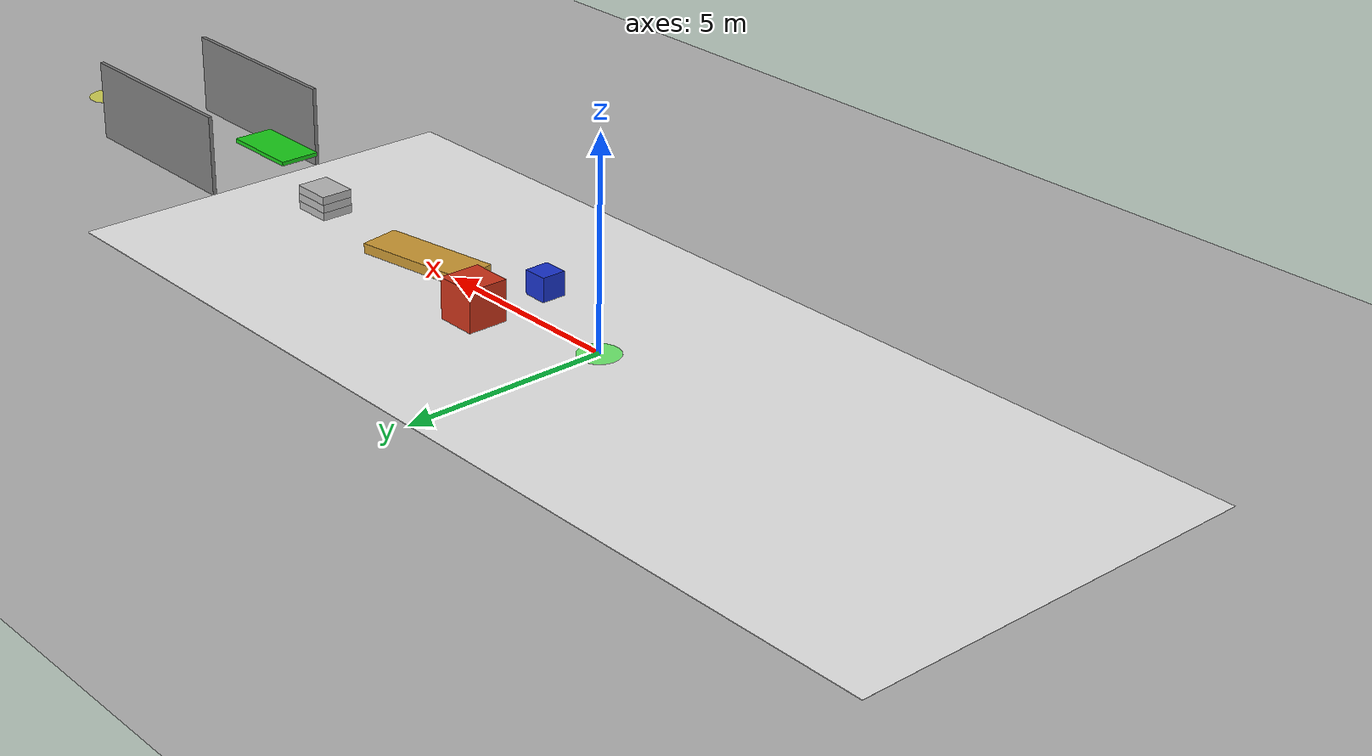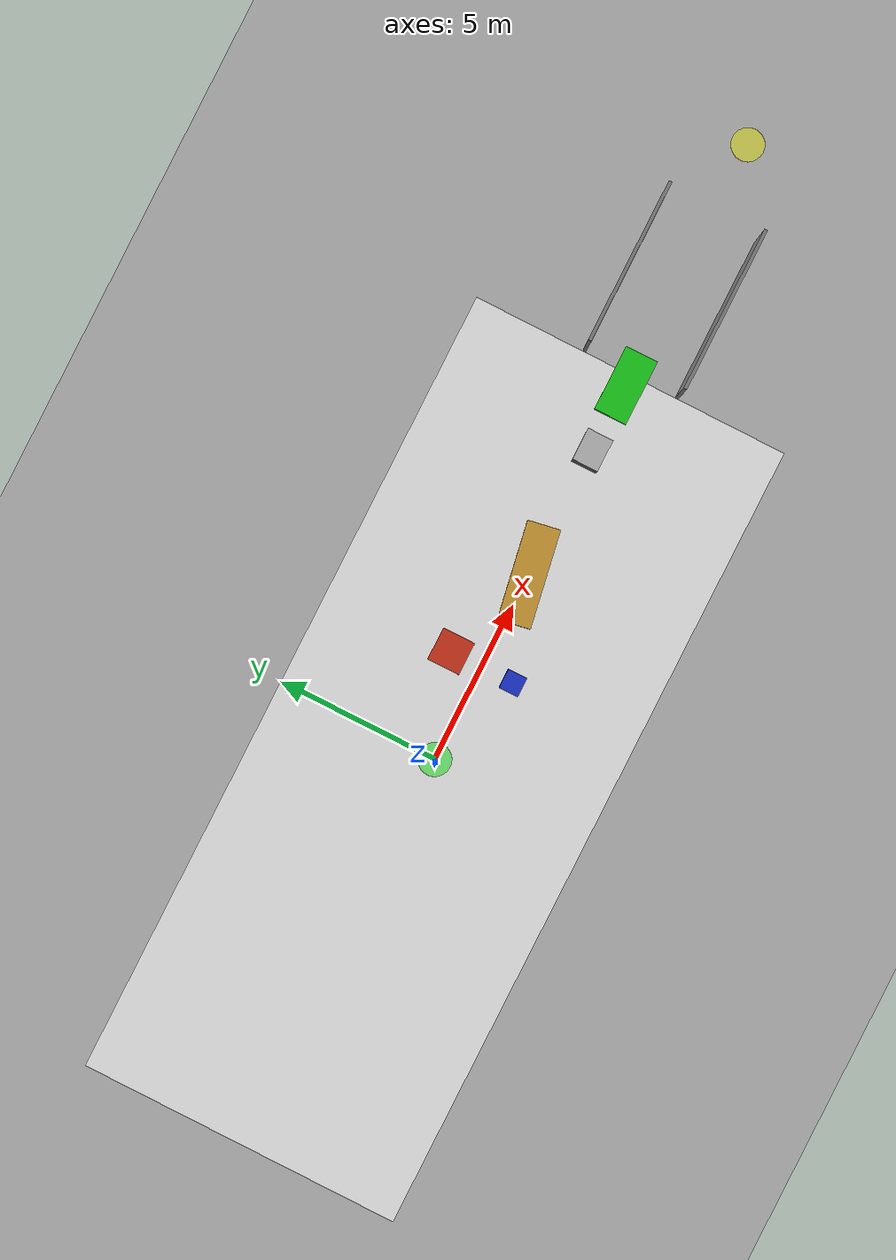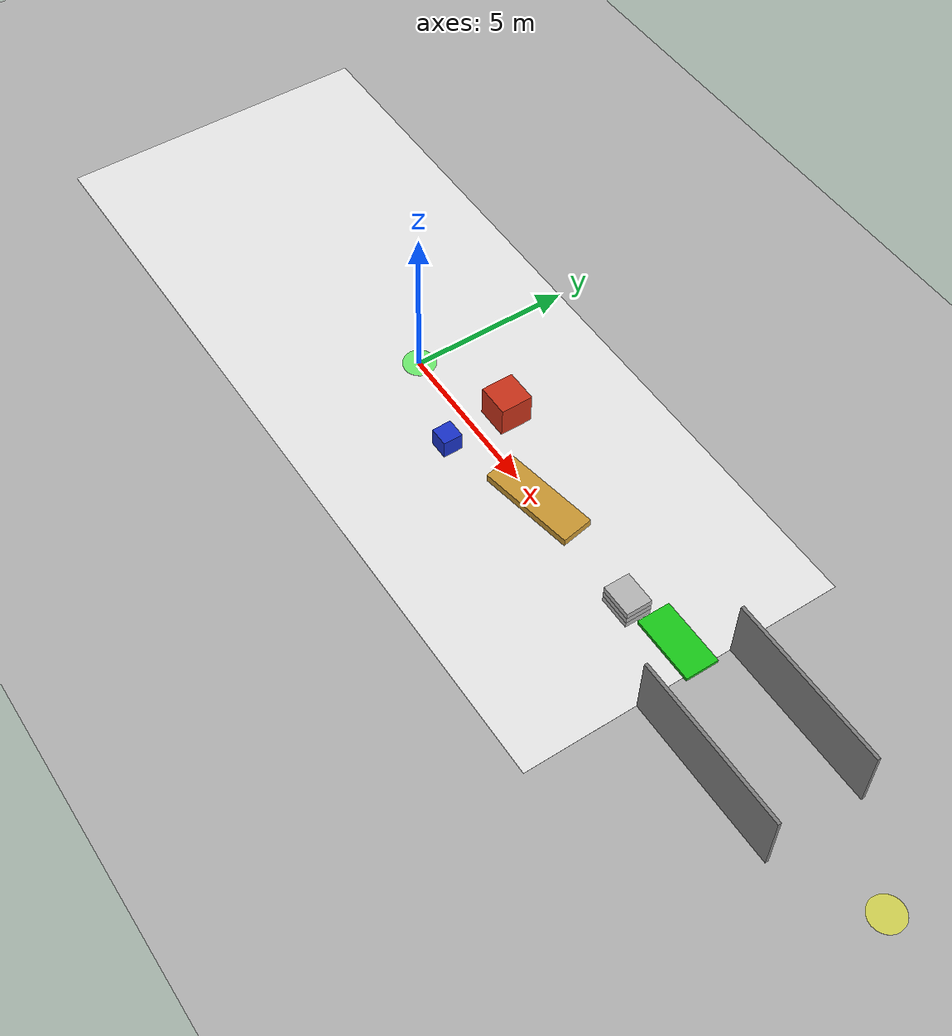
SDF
<?xml version="1.0" ?>
<sdf version="1.7">
  <world name="humanoid_test_world">
    <!-- Physics configuration optimized for humanoid simulation -->
    <physics type="ode">
      <max_step_size>0.002</max_step_size>
      <real_time_factor>0.8</real_time_factor>
      <real_time_update_rate>500</real_time_update_rate>
      <gravity>0 0 -9.8</gravity>
      <ode>
        <solver>
          <type>quick</type>
          <iters>20</iters>
          <sor>1.3</sor>
        </solver>
        <constraints>
          <cfm>0.000001</cfm>
          <erp>0.2</erp>
          <contact_max_correcting_vel>100</contact_max_correcting_vel>
          <contact_surface_layer>0.001</contact_surface_layer>
        </constraints>
      </ode>
    </physics>

    <!-- Scene configuration -->
    <scene>
      <ambient>0.3 0.3 0.3 1</ambient>
      <background>0.7 0.7 0.7 1</background>
      <shadows>true</shadows>
    </scene>

    <!-- Lighting -->
    <include>
      <uri>model://sun</uri>
    </include>

    <!-- Ground plane with appropriate friction for walking -->
    <model name="ground_plane">
      <static>true</static>
      <link name="link">
        <collision name="collision">
          <geometry>
            <plane>
              <normal>0 0 1</normal>
              <size>100 100</size>
            </plane>
          </geometry>
          <surface>
            <friction>
              <ode>
                <mu>1.0</mu>
                <mu2>1.0</mu2>
              </ode>
            </friction>
            <contact>
              <ode>
                <min_depth>0.001</min_depth>
                <max_vel>100</max_vel>
              </ode>
            </contact>
          </surface>
        </collision>
        <visual name="visual">
          <geometry>
            <plane>
              <normal>0 0 1</normal>
              <size>100 100</size>
            </plane>
          </geometry>
          <material>
            <ambient>0.7 0.7 0.7 1</ambient>
            <diffuse>0.7 0.7 0.7 1</diffuse>
            <specular>0.3 0.3 0.3 1</specular>
          </material>
        </visual>
      </link>
    </model>

    <!-- Starting area marker -->
    <model name="start_marker">
      <pose>0 0 0.01 0 0 0</pose>
      <static>true</static>
      <link name="link">
        <visual name="visual">
          <geometry>
            <cylinder>
              <radius>0.5</radius>
              <length>0.01</length>
            </cylinder>
          </geometry>
          <material>
            <ambient>0 1 0 0.5</ambient>
            <diffuse>0 1 0 0.5</diffuse>
          </material>
        </visual>
      </link>
    </model>

    <!-- Obstacle course section -->
    <!-- Simple box obstacles -->
    <model name="obstacle_1">
      <pose>3 1 0.5 0 0 0</pose>
      <static>true</static>
      <link name="link">
        <collision name="collision">
          <geometry>
            <box>
              <size>1 1 1</size>
            </box>
          </geometry>
        </collision>
        <visual name="visual">
          <geometry>
            <box>
              <size>1 1 1</size>
            </box>
          </geometry>
          <material>
            <ambient>0.8 0.2 0.1 1</ambient>
            <diffuse>0.8 0.2 0.1 1</diffuse>
          </material>
        </visual>
      </link>
    </model>

    <model name="obstacle_2">
      <pose>3 -1 0.3 0 0 0</pose>
      <static>true</static>
      <link name="link">
        <collision name="collision">
          <geometry>
            <box>
              <size>0.6 0.6 0.6</size>
            </box>
          </geometry>
        </collision>
        <visual name="visual">
          <geometry>
            <box>
              <size>0.6 0.6 0.6</size>
            </box>
          </geometry>
          <material>
            <ambient>0.1 0.2 0.8 1</ambient>
            <diffuse>0.1 0.2 0.8 1</diffuse>
          </material>
        </visual>
      </link>
    </model>

    <!-- Ramp for testing locomotion -->
    <model name="ramp">
      <pose>6 0 0 0 0 0.174</pose>  <!-- ~10 degree incline -->
      <static>true</static>
      <link name="link">
        <collision name="collision">
          <geometry>
            <box>
              <size>3 1 0.5</size>
            </box>
          </geometry>
        </collision>
        <visual name="visual">
          <geometry>
            <box>
              <size>3 1 0.5</size>
            </box>
          </geometry>
          <material>
            <ambient>0.8 0.6 0.2 1</ambient>
            <diffuse>0.8 0.6 0.2 1</diffuse>
          </material>
        </visual>
      </link>
    </model>

    <!-- Stairs for testing step climbing -->
    <model name="stairs">
      <pose>10 0 0 0 0 0</pose>
      <static>true</static>
      <link name="link">
        <!-- Step 1 -->
        <collision name="step1_collision">
          <pose>0 0 0.1 0 0 0</pose>
          <geometry>
            <box>
              <size>1 0.8 0.2</size>
            </box>
          </geometry>
        </collision>
        <visual name="step1_visual">
          <pose>0 0 0.1 0 0 0</pose>
          <geometry>
            <box>
              <size>1 0.8 0.2</size>
            </box>
          </geometry>
        </visual>

        <!-- Step 2 -->
        <collision name="step2_collision">
          <pose>0 0 0.3 0 0 0</pose>
          <geometry>
            <box>
              <size>1 0.8 0.2</size>
            </box>
          </geometry>
        </collision>
        <visual name="step2_visual">
          <pose>0 0 0.3 0 0 0</pose>
          <geometry>
            <box>
              <size>1 0.8 0.2</size>
            </box>
          </geometry>
        </visual>

        <!-- Step 3 -->
        <collision name="step3_collision">
          <pose>0 0 0.5 0 0 0</pose>
          <geometry>
            <box>
              <size>1 0.8 0.2</size>
            </box>
          </geometry>
        </collision>
        <visual name="step3_visual">
          <pose>0 0 0.5 0 0 0</pose>
          <geometry>
            <box>
              <size>1 0.8 0.2</size>
            </box>
          </geometry>
        </visual>
      </link>
    </model>

    <!-- Narrow passage -->
    <model name="wall_left">
      <pose>15 1.5 1 0 0 0</pose>
      <static>true</static>
      <link name="link">
        <collision name="collision">
          <geometry>
            <box>
              <size>5 0.1 2</size>
            </box>
          </geometry>
        </collision>
        <visual name="visual">
          <geometry>
            <box>
              <size>5 0.1 2</size>
            </box>
          </geometry>
          <material>
            <ambient>0.5 0.5 0.5 1</ambient>
            <diffuse>0.5 0.5 0.5 1</diffuse>
          </material>
        </visual>
      </link>
    </model>

    <model name="wall_right">
      <pose>15 -1.5 1 0 0 0</pose>
      <static>true</static>
      <link name="link">
        <collision name="collision">
          <geometry>
            <box>
              <size>5 0.1 2</size>
            </box>
          </geometry>
        </collision>
        <visual name="visual">
          <geometry>
            <box>
              <size>5 0.1 2</size>
            </box>
          </geometry>
          <material>
            <ambient>0.5 0.5 0.5 1</ambient>
            <diffuse>0.5 0.5 0.5 1</diffuse>
          </material>
        </visual>
      </link>
    </model>

    <!-- Goal marker -->
    <model name="goal_marker">
      <pose>20 0 0.01 0 0 0</pose>
      <static>true</static>
      <link name="link">
        <visual name="visual">
          <geometry>
            <cylinder>
              <radius>0.5</radius>
              <length>0.01</length>
            </cylinder>
          </geometry>
          <material>
            <ambient>1 1 0 0.5</ambient>
            <diffuse>1 1 0 0.5</diffuse>
          </material>
        </visual>
      </link>
    </model>

    <!-- Moving platform for dynamic testing -->
    <model name="moving_platform">
      <pose>12 0 1 0 0 0</pose>
      <static>false</static>
      <link name="link">
        <collision name="collision">
          <geometry>
            <box>
              <size>2 1 0.1</size>
            </box>
          </geometry>
        </collision>
        <visual name="visual">
          <geometry>
            <box>
              <size>2 1 0.1</size>
            </box>
          </geometry>
          <material>
            <ambient>0.1 0.8 0.1 1</ambient>
            <diffuse>0.1 0.8 0.1 1</diffuse>
          </material>
        </visual>
        <inertial>
          <mass>10.0</mass>
          <inertia>
            <ixx>0.833</ixx>
            <ixy>0</ixy>
            <ixz>0</ixz>
            <iyy>2.5</iyy>
            <iyz>0</iyz>
            <izz>3.33</izz>
          </inertia>
        </inertial>
      </link>
      <!-- Add a simple plugin to make it move back and forth -->
      <plugin name="moving_platform_controller" filename="libgazebo_ros_p3d.so">
        <alwaysOn>true</alwaysOn>
        <updateRate>30.0</updateRate>
        <bodyName>moving_platform::link</bodyName>
        <topicName>moving_platform/pose</topicName>
        <gaussianNoise>0.0</gaussianNoise>
      </plugin>
    </model>

    <!-- Add some textured ground for visual reference -->
    <model name="checkered_floor">
      <pose>0 0 0 0 0 0</pose>
      <static>true</static>
      <link name="link">
        <visual name="visual">
          <geometry>
            <box>
              <size>25 10 0.01</size>
            </box>
          </geometry>
          <material>
            <ambient>0.8 0.8 0.8 1</ambient>
            <diffuse>0.8 0.8 0.8 1</diffuse>
            <script>
              <uri>file://materials/scripts/gazebo.material</uri>
              <name>Gazebo/WhitePVC</name>
            </script>
          </material>
        </visual>
      </link>
    </model>
  </world>
</sdf>
